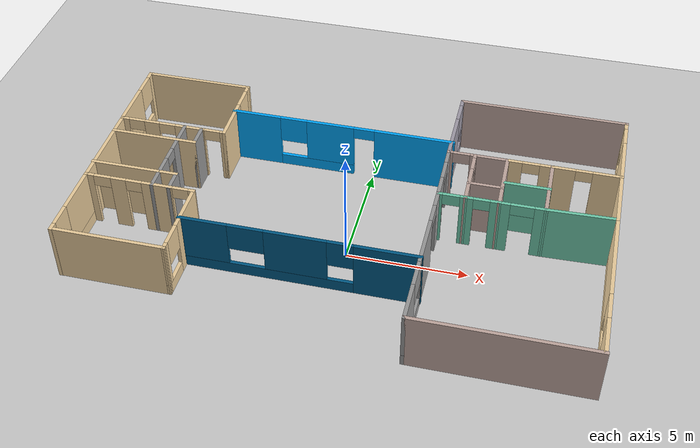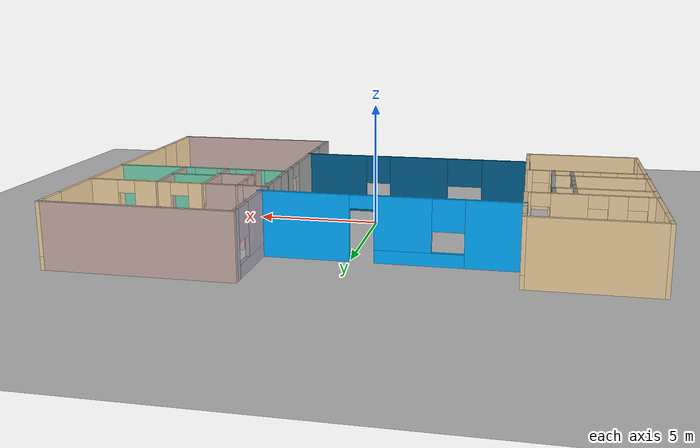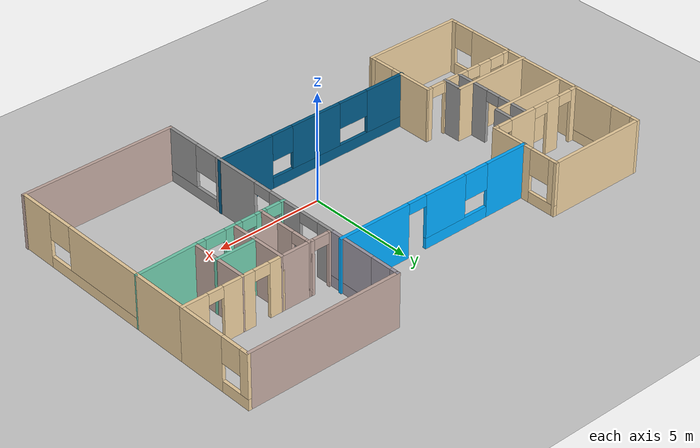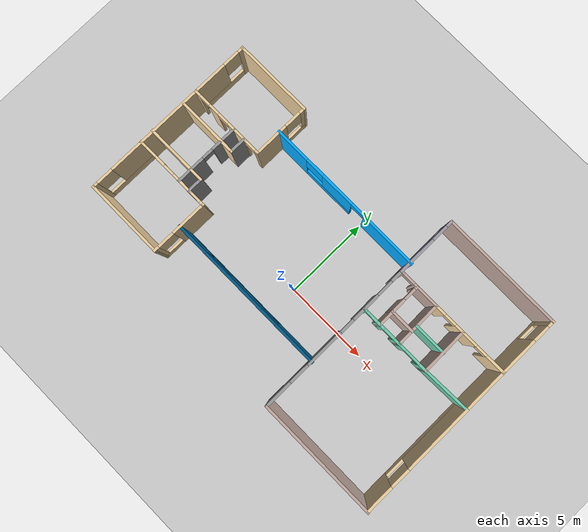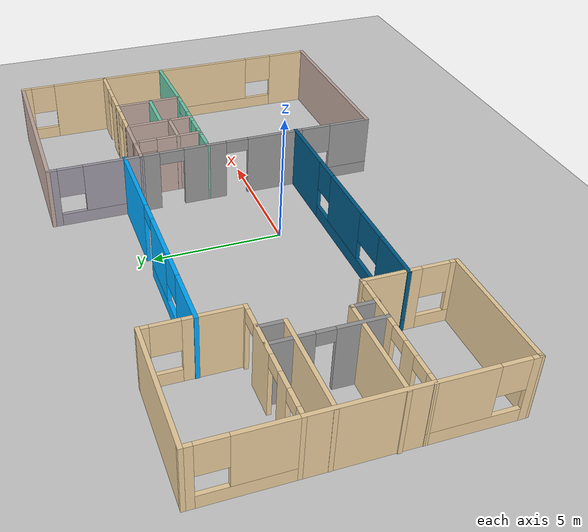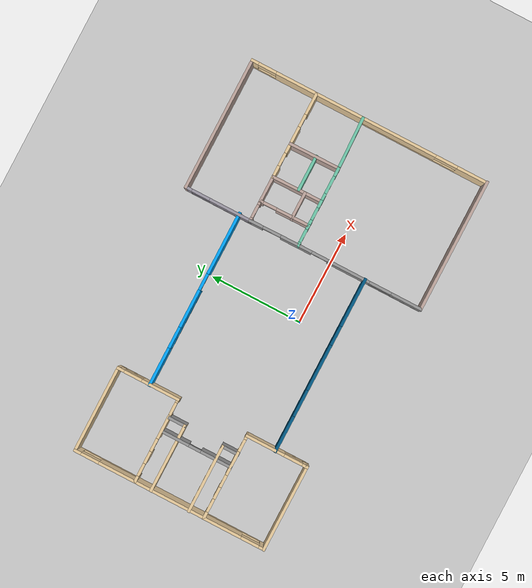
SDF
<sdf version="1.6">
 <world name="default">
  <model name="ground_plane">
   <static>1</static>
   <link name="link">
    <collision name="collision">
     <geometry><plane><normal>0 0 1</normal><size>100 100</size></plane></geometry>
     <surface><friction><ode><mu>100</mu><mu2>50</mu2></ode></friction></surface>
    </collision>
    <visual name="visual">
     <cast_shadows>0</cast_shadows>
     <geometry><plane><normal>0 0 1</normal><size>100 100</size></plane></geometry>
     <material>
      <script><uri>file://media/materials/scripts/gazebo.material</uri><name>Gazebo/Grey</name></script>
     </material>
    </visual>
   </link>
  </model>
  <model name="building_1">
   <pose>-0.196 1.55734 0 0 -0 0</pose>
   <link name="Wall_0">
    <pose>10.6077 -3.05967 0 0 -0 1.5708</pose>
    <visual name="Wall_0_Visual_0">
     <pose>-2.67508 0 1.25 0 -0 0</pose>
     <geometry><box><size>1.64985 0.15 2.5</size></box></geometry>
     <material>
      <script><uri>file://media/materials/scripts/gazebo.material</uri><name>Gazebo/Grey</name></script>
      <ambient>0.921569 0.807843 0.615686 1</ambient>
     </material>
    </visual>
    <collision name="Wall_0_Collision_0">
     <geometry><box><size>1.64985 0.15 2.5</size></box></geometry>
     <pose>-2.67508 0 1.25 0 -0 0</pose>
    </collision>
    <visual name="Wall_0_Visual_1">
     <pose>0.824924 0 0.25 0 -0 0</pose>
     <geometry><box><size>5.35015 0.15 0.5</size></box></geometry>
     <material>
      <script><uri>file://media/materials/scripts/gazebo.material</uri><name>Gazebo/Grey</name></script>
      <ambient>0.921569 0.807843 0.615686 1</ambient>
     </material>
    </visual>
    <collision name="Wall_0_Collision_1">
     <geometry><box><size>5.35015 0.15 0.5</size></box></geometry>
     <pose>0.824924 0 0.25 0 -0 0</pose>
    </collision>
    <visual name="Wall_0_Visual_2">
     <pose>1.42468 0 1.5 0 -0 0</pose>
     <geometry><box><size>4.15065 0.15 2</size></box></geometry>
     <material>
      <script><uri>file://media/materials/scripts/gazebo.material</uri><name>Gazebo/Grey</name></script>
      <ambient>0.921569 0.807843 0.615686 1</ambient>
     </material>
    </visual>
    <collision name="Wall_0_Collision_2">
     <geometry><box><size>4.15065 0.15 2</size></box></geometry>
     <pose>1.42468 0 1.5 0 -0 0</pose>
    </collision>
    <visual name="Wall_0_Visual_3">
     <pose>-1.2504 0 1.9 0 -0 0</pose>
     <geometry><box><size>1.1995 0.15 1.2</size></box></geometry>
     <material>
      <script><uri>file://media/materials/scripts/gazebo.material</uri><name>Gazebo/Grey</name></script>
      <ambient>0.921569 0.807843 0.615686 1</ambient>
     </material>
    </visual>
    <collision name="Wall_0_Collision_3">
     <geometry><box><size>1.1995 0.15 1.2</size></box></geometry>
     <pose>-1.2504 0 1.9 0 -0 0</pose>
    </collision>
   </link>
   <link name="Wall_1">
    <collision name="Wall_1_Collision">
     <geometry><box><size>2.75 0.15 2.5</size></box></geometry>
     <pose>0 0 1.25 0 -0 0</pose>
    </collision>
    <visual name="Wall_1_Visual">
     <pose>0 0 1.25 0 -0 0</pose>
     <geometry><box><size>2.75 0.15 2.5</size></box></geometry>
     <material>
      <script><uri>file://media/materials/scripts/gazebo.material</uri><name>Gazebo/Grey</name></script>
      <ambient>0.921569 0.807843 0.615686 1</ambient>
     </material>
    </visual>
    <pose>10.6077 1.66533 0 0 -0 1.5708</pose>
   </link>
   <link name="Wall_11">
    <pose>3.50766 4.76533 0 0 0 -1.5708</pose>
    <visual name="Wall_11_Visual_0">
     <pose>-1.66535 0 1.25 0 -0 0</pose>
     <geometry><box><size>0.419296 0.15 2.5</size></box></geometry>
     <material>
      <script><uri>file://media/materials/scripts/gazebo.material</uri><name>Gazebo/Grey</name></script>
      <ambient>0.627451 0.607843 0.658824 1</ambient>
     </material>
    </visual>
    <collision name="Wall_11_Collision_0">
     <geometry><box><size>0.419296 0.15 2.5</size></box></geometry>
     <pose>-1.66535 0 1.25 0 -0 0</pose>
    </collision>
    <visual name="Wall_11_Visual_1">
     <pose>0.209648 0 0.25 0 -0 0</pose>
     <geometry><box><size>3.3307 0.15 0.5</size></box></geometry>
     <material>
      <script><uri>file://media/materials/scripts/gazebo.material</uri><name>Gazebo/Grey</name></script>
      <ambient>0.627451 0.607843 0.658824 1</ambient>
     </material>
    </visual>
    <collision name="Wall_11_Collision_1">
     <geometry><box><size>3.3307 0.15 0.5</size></box></geometry>
     <pose>0.209648 0 0.25 0 -0 0</pose>
    </collision>
    <visual name="Wall_11_Visual_2">
     <pose>0.700272 0 1.5 0 -0 0</pose>
     <geometry><box><size>2.34945 0.15 2</size></box></geometry>
     <material>
      <script><uri>file://media/materials/scripts/gazebo.material</uri><name>Gazebo/Grey</name></script>
      <ambient>0.627451 0.607843 0.658824 1</ambient>
     </material>
    </visual>
    <collision name="Wall_11_Collision_2">
     <geometry><box><size>2.34945 0.15 2</size></box></geometry>
     <pose>0.700272 0 1.5 0 -0 0</pose>
    </collision>
    <visual name="Wall_11_Visual_3">
     <pose>-0.96508 0 1.9 0 -0 0</pose>
     <geometry><box><size>0.981249 0.15 1.2</size></box></geometry>
     <material>
      <script><uri>file://media/materials/scripts/gazebo.material</uri><name>Gazebo/Grey</name></script>
      <ambient>0.627451 0.607843 0.658824 1</ambient>
     </material>
    </visual>
    <collision name="Wall_11_Collision_3">
     <geometry><box><size>0.981249 0.15 1.2</size></box></geometry>
     <pose>-0.96508 0 1.9 0 -0 0</pose>
    </collision>
   </link>
   <link name="Wall_15">
    <pose>4.05766 2.96533 0 0 -0 0</pose>
    <visual name="Wall_15_Visual_0">
     <pose>-0.500149 0 1.25 0 -0 0</pose>
     <geometry><box><size>0.249701 0.15 2.5</size></box></geometry>
     <material>
      <script><uri>file://media/materials/scripts/gazebo.material</uri><name>Gazebo/Grey</name></script>
      <ambient>0.760784 0.662745 0.627451 1</ambient>
     </material>
    </visual>
    <collision name="Wall_15_Collision_0">
     <geometry><box><size>0.249701 0.15 2.5</size></box></geometry>
     <pose>-0.500149 0 1.25 0 -0 0</pose>
    </collision>
    <visual name="Wall_15_Visual_1">
     <pose>0.482342 0 1.25 0 -0 0</pose>
     <geometry><box><size>0.285316 0.15 2.5</size></box></geometry>
     <material>
      <script><uri>file://media/materials/scripts/gazebo.material</uri><name>Gazebo/Grey</name></script>
      <ambient>0.760784 0.662745 0.627451 1</ambient>
     </material>
    </visual>
    <collision name="Wall_15_Collision_1">
     <geometry><box><size>0.285316 0.15 2.5</size></box></geometry>
     <pose>0.482342 0 1.25 0 -0 0</pose>
    </collision>
    <visual name="Wall_15_Visual_2">
     <pose>-0.017807 0 2.25 0 -0 0</pose>
     <geometry><box><size>0.714982 0.15 0.5</size></box></geometry>
     <material>
      <script><uri>file://media/materials/scripts/gazebo.material</uri><name>Gazebo/Grey</name></script>
      <ambient>0.760784 0.662745 0.627451 1</ambient>
     </material>
    </visual>
    <collision name="Wall_15_Collision_2">
     <geometry><box><size>0.714982 0.15 0.5</size></box></geometry>
     <pose>-0.017807 0 2.25 0 -0 0</pose>
    </collision>
   </link>
   <link name="Wall_16">
    <collision name="Wall_16_Collision">
     <geometry><box><size>1.5 0.15 2.5</size></box></geometry>
     <pose>0 0 1.25 0 -0 0</pose>
    </collision>
    <visual name="Wall_16_Visual">
     <pose>0 0 1.25 0 -0 0</pose>
     <geometry><box><size>1.5 0.15 2.5</size></box></geometry>
     <material>
      <script><uri>file://media/materials/scripts/gazebo.material</uri><name>Gazebo/Grey</name></script>
      <ambient>0.760784 0.662745 0.627451 1</ambient>
     </material>
    </visual>
    <pose>5.28266 2.96533 0 0 -0 0</pose>
   </link>
   <link name="Wall_17">
    <pose>6.88266 2.96533 0 0 -0 0</pose>
    <visual name="Wall_17_Visual_0">
     <pose>-0.653322 0 1.25 0 -0 0</pose>
     <geometry><box><size>0.693356 0.15 2.5</size></box></geometry>
     <material>
      <script><uri>file://media/materials/scripts/gazebo.material</uri><name>Gazebo/Grey</name></script>
      <ambient>0.921569 0.807843 0.615686 1</ambient>
     </material>
    </visual>
    <collision name="Wall_17_Collision_0">
     <geometry><box><size>0.693356 0.15 2.5</size></box></geometry>
     <pose>-0.653322 0 1.25 0 -0 0</pose>
    </collision>
    <visual name="Wall_17_Visual_1">
     <pose>0.704169 0 1.25 0 -0 0</pose>
     <geometry><box><size>0.591662 0.15 2.5</size></box></geometry>
     <material>
      <script><uri>file://media/materials/scripts/gazebo.material</uri><name>Gazebo/Grey</name></script>
      <ambient>0.921569 0.807843 0.615686 1</ambient>
     </material>
    </visual>
    <collision name="Wall_17_Collision_1">
     <geometry><box><size>0.591662 0.15 2.5</size></box></geometry>
     <pose>0.704169 0 1.25 0 -0 0</pose>
    </collision>
    <visual name="Wall_17_Visual_2">
     <pose>0.050847 0 2.25 0 -0 0</pose>
     <geometry><box><size>0.714982 0.15 0.5</size></box></geometry>
     <material>
      <script><uri>file://media/materials/scripts/gazebo.material</uri><name>Gazebo/Grey</name></script>
      <ambient>0.921569 0.807843 0.615686 1</ambient>
     </material>
    </visual>
    <collision name="Wall_17_Collision_2">
     <geometry><box><size>0.714982 0.15 0.5</size></box></geometry>
     <pose>0.050847 0 2.25 0 -0 0</pose>
    </collision>
   </link>
   <link name="Wall_18">
    <pose>9.20766 2.96533 0 0 -0 0</pose>
    <visual name="Wall_18_Visual_0">
     <pose>-0.963773 0 1.25 0 -0 0</pose>
     <geometry><box><size>1.02245 0.15 2.5</size></box></geometry>
     <material>
      <script><uri>file://media/materials/scripts/gazebo.material</uri><name>Gazebo/Grey</name></script>
      <ambient>0.921569 0.807843 0.615686 1</ambient>
     </material>
    </visual>
    <collision name="Wall_18_Collision_0">
     <geometry><box><size>1.02245 0.15 2.5</size></box></geometry>
     <pose>-0.963773 0 1.25 0 -0 0</pose>
    </collision>
    <visual name="Wall_18_Visual_1">
     <pose>0.85844 0 1.25 0 -0 0</pose>
     <geometry><box><size>1.23312 0.15 2.5</size></box></geometry>
     <material>
      <script><uri>file://media/materials/scripts/gazebo.material</uri><name>Gazebo/Grey</name></script>
      <ambient>0.921569 0.807843 0.615686 1</ambient>
     </material>
    </visual>
    <collision name="Wall_18_Collision_1">
     <geometry><box><size>1.23312 0.15 2.5</size></box></geometry>
     <pose>0.85844 0 1.25 0 -0 0</pose>
    </collision>
    <visual name="Wall_18_Visual_2">
     <pose>-0.105333 0 2.25 0 -0 0</pose>
     <geometry><box><size>0.694425 0.15 0.5</size></box></geometry>
     <material>
      <script><uri>file://media/materials/scripts/gazebo.material</uri><name>Gazebo/Grey</name></script>
      <ambient>0.921569 0.807843 0.615686 1</ambient>
     </material>
    </visual>
    <collision name="Wall_18_Collision_2">
     <geometry><box><size>0.694425 0.15 0.5</size></box></geometry>
     <pose>-0.105333 0 2.25 0 -0 0</pose>
    </collision>
   </link>
   <link name="Wall_2">
    <pose>10.6077 4.76533 0 0 -0 1.5708</pose>
    <visual name="Wall_2_Visual_0">
     <pose>-0.712356 0 1.25 0 -0 0</pose>
     <geometry><box><size>2.32529 0.15 2.5</size></box></geometry>
     <material>
      <script><uri>file://media/materials/scripts/gazebo.material</uri><name>Gazebo/Grey</name></script>
      <ambient>0.921569 0.807843 0.615686 1</ambient>
     </material>
    </visual>
    <collision name="Wall_2_Collision_0">
     <geometry><box><size>2.32529 0.15 2.5</size></box></geometry>
     <pose>-0.712356 0 1.25 0 -0 0</pose>
    </collision>
    <visual name="Wall_2_Visual_1">
     <pose>1.16264 0 0.25 0 -0 0</pose>
     <geometry><box><size>1.42471 0.15 0.5</size></box></geometry>
     <material>
      <script><uri>file://media/materials/scripts/gazebo.material</uri><name>Gazebo/Grey</name></script>
      <ambient>0.921569 0.807843 0.615686 1</ambient>
     </material>
    </visual>
    <collision name="Wall_2_Collision_1">
     <geometry><box><size>1.42471 0.15 0.5</size></box></geometry>
     <pose>1.16264 0 0.25 0 -0 0</pose>
    </collision>
    <visual name="Wall_2_Visual_2">
     <pose>1.65931 0 1.5 0 -0 0</pose>
     <geometry><box><size>0.431379 0.15 2</size></box></geometry>
     <material>
      <script><uri>file://media/materials/scripts/gazebo.material</uri><name>Gazebo/Grey</name></script>
      <ambient>0.921569 0.807843 0.615686 1</ambient>
     </material>
    </visual>
    <collision name="Wall_2_Collision_2">
     <geometry><box><size>0.431379 0.15 2</size></box></geometry>
     <pose>1.65931 0 1.5 0 -0 0</pose>
    </collision>
    <visual name="Wall_2_Visual_3">
     <pose>0.946955 0 1.9 0 -0 0</pose>
     <geometry><box><size>0.993332 0.15 1.2</size></box></geometry>
     <material>
      <script><uri>file://media/materials/scripts/gazebo.material</uri><name>Gazebo/Grey</name></script>
      <ambient>0.921569 0.807843 0.615686 1</ambient>
     </material>
    </visual>
    <collision name="Wall_2_Collision_3">
     <geometry><box><size>0.993332 0.15 1.2</size></box></geometry>
     <pose>0.946955 0 1.9 0 -0 0</pose>
    </collision>
   </link>
   <link name="Wall_20">
    <pose>4.08783 0.284672 0 0 -0 0</pose>
    <visual name="Wall_20_Visual_0">
     <pose>-0.502297 0 1.25 0 -0 0</pose>
     <geometry><box><size>0.245405 0.15 2.5</size></box></geometry>
     <material>
      <script><uri>file://media/materials/scripts/gazebo.material</uri><name>Gazebo/Grey</name></script>
      <ambient>0.435294 0.796078 0.67451 1</ambient>
     </material>
    </visual>
    <collision name="Wall_20_Collision_0">
     <geometry><box><size>0.245405 0.15 2.5</size></box></geometry>
     <pose>-0.502297 0 1.25 0 -0 0</pose>
    </collision>
    <visual name="Wall_20_Visual_1">
     <pose>0.480194 0 1.25 0 -0 0</pose>
     <geometry><box><size>0.289613 0.15 2.5</size></box></geometry>
     <material>
      <script><uri>file://media/materials/scripts/gazebo.material</uri><name>Gazebo/Grey</name></script>
      <ambient>0.435294 0.796078 0.67451 1</ambient>
     </material>
    </visual>
    <collision name="Wall_20_Collision_1">
     <geometry><box><size>0.289613 0.15 2.5</size></box></geometry>
     <pose>0.480194 0 1.25 0 -0 0</pose>
    </collision>
    <visual name="Wall_20_Visual_2">
     <pose>-0.022104 0 2.25 0 -0 0</pose>
     <geometry><box><size>0.714982 0.15 0.5</size></box></geometry>
     <material>
      <script><uri>file://media/materials/scripts/gazebo.material</uri><name>Gazebo/Grey</name></script>
      <ambient>0.435294 0.796078 0.67451 1</ambient>
     </material>
    </visual>
    <collision name="Wall_20_Collision_2">
     <geometry><box><size>0.714982 0.15 0.5</size></box></geometry>
     <pose>-0.022104 0 2.25 0 -0 0</pose>
    </collision>
   </link>
   <link name="Wall_21">
    <pose>5.31283 0.284672 0 0 -0 0</pose>
    <visual name="Wall_21_Visual_0">
     <pose>-0.555432 0 1.25 0 -0 0</pose>
     <geometry><box><size>0.389136 0.15 2.5</size></box></geometry>
     <material>
      <script><uri>file://media/materials/scripts/gazebo.material</uri><name>Gazebo/Grey</name></script>
      <ambient>0.435294 0.796078 0.67451 1</ambient>
     </material>
    </visual>
    <collision name="Wall_21_Collision_0">
     <geometry><box><size>0.389136 0.15 2.5</size></box></geometry>
     <pose>-0.555432 0 1.25 0 -0 0</pose>
    </collision>
    <visual name="Wall_21_Visual_1">
     <pose>0.531502 0 1.25 0 -0 0</pose>
     <geometry><box><size>0.436997 0.15 2.5</size></box></geometry>
     <material>
      <script><uri>file://media/materials/scripts/gazebo.material</uri><name>Gazebo/Grey</name></script>
      <ambient>0.435294 0.796078 0.67451 1</ambient>
     </material>
    </visual>
    <collision name="Wall_21_Collision_1">
     <geometry><box><size>0.436997 0.15 2.5</size></box></geometry>
     <pose>0.531502 0 1.25 0 -0 0</pose>
    </collision>
    <visual name="Wall_21_Visual_2">
     <pose>-0.023931 0 2.25 0 -0 0</pose>
     <geometry><box><size>0.673867 0.15 0.5</size></box></geometry>
     <material>
      <script><uri>file://media/materials/scripts/gazebo.material</uri><name>Gazebo/Grey</name></script>
      <ambient>0.435294 0.796078 0.67451 1</ambient>
     </material>
    </visual>
    <collision name="Wall_21_Collision_2">
     <geometry><box><size>0.673867 0.15 0.5</size></box></geometry>
     <pose>-0.023931 0 2.25 0 -0 0</pose>
    </collision>
   </link>
   <link name="Wall_22">
    <pose>6.91283 0.284672 0 0 -0 0</pose>
    <visual name="Wall_22_Visual_0">
     <pose>-0.740361 0 1.25 0 -0 0</pose>
     <geometry><box><size>0.519278 0.15 2.5</size></box></geometry>
     <material>
      <script><uri>file://media/materials/scripts/gazebo.material</uri><name>Gazebo/Grey</name></script>
      <ambient>0.435294 0.796078 0.67451 1</ambient>
     </material>
    </visual>
    <collision name="Wall_22_Collision_0">
     <geometry><box><size>0.519278 0.15 2.5</size></box></geometry>
     <pose>-0.740361 0 1.25 0 -0 0</pose>
    </collision>
    <visual name="Wall_22_Visual_1">
     <pose>0.740475 0 1.25 0 -0 0</pose>
     <geometry><box><size>0.519049 0.15 2.5</size></box></geometry>
     <material>
      <script><uri>file://media/materials/scripts/gazebo.material</uri><name>Gazebo/Grey</name></script>
      <ambient>0.435294 0.796078 0.67451 1</ambient>
     </material>
    </visual>
    <collision name="Wall_22_Collision_1">
     <geometry><box><size>0.519049 0.15 2.5</size></box></geometry>
     <pose>0.740475 0 1.25 0 -0 0</pose>
    </collision>
    <visual name="Wall_22_Visual_2">
     <pose>0.000114 0 2.25 0 -0 0</pose>
     <geometry><box><size>0.961673 0.15 0.5</size></box></geometry>
     <material>
      <script><uri>file://media/materials/scripts/gazebo.material</uri><name>Gazebo/Grey</name></script>
      <ambient>0.435294 0.796078 0.67451 1</ambient>
     </material>
    </visual>
    <collision name="Wall_22_Collision_2">
     <geometry><box><size>0.961673 0.15 0.5</size></box></geometry>
     <pose>0.000114 0 2.25 0 -0 0</pose>
    </collision>
   </link>
   <link name="Wall_25">
    <pose>4.62274 1.625 0 0 0 -1.55954</pose>
    <visual name="Wall_25_Visual_0">
     <pose>-1.29279 0 1.25 0 -0 0</pose>
     <geometry><box><size>0.245238 0.15 2.5</size></box></geometry>
     <material>
      <script><uri>file://media/materials/scripts/gazebo.material</uri><name>Gazebo/Grey</name></script>
      <ambient>0.760784 0.662745 0.627451 1</ambient>
     </material>
    </visual>
    <collision name="Wall_25_Collision_0">
     <geometry><box><size>0.245238 0.15 2.5</size></box></geometry>
     <pose>-1.29279 0 1.25 0 -0 0</pose>
    </collision>
    <visual name="Wall_25_Visual_1">
     <pose>0.482068 0 1.25 0 -0 0</pose>
     <geometry><box><size>1.86669 0.15 2.5</size></box></geometry>
     <material>
      <script><uri>file://media/materials/scripts/gazebo.material</uri><name>Gazebo/Grey</name></script>
      <ambient>0.760784 0.662745 0.627451 1</ambient>
     </material>
    </visual>
    <collision name="Wall_25_Collision_1">
     <geometry><box><size>1.86669 0.15 2.5</size></box></geometry>
     <pose>0.482068 0 1.25 0 -0 0</pose>
    </collision>
    <visual name="Wall_25_Visual_2">
     <pose>-0.810726 0 2.25 0 -0 0</pose>
     <geometry><box><size>0.718899 0.15 0.5</size></box></geometry>
     <material>
      <script><uri>file://media/materials/scripts/gazebo.material</uri><name>Gazebo/Grey</name></script>
      <ambient>0.760784 0.662745 0.627451 1</ambient>
     </material>
    </visual>
    <collision name="Wall_25_Collision_2">
     <geometry><box><size>0.718899 0.15 0.5</size></box></geometry>
     <pose>-0.810726 0 2.25 0 -0 0</pose>
    </collision>
   </link>
   <link name="Wall_27">
    <collision name="Wall_27_Collision">
     <geometry><box><size>2.83083 0.15 2.5</size></box></geometry>
     <pose>0 0 1.25 0 -0 0</pose>
    </collision>
    <visual name="Wall_27_Visual">
     <pose>0 0 1.25 0 -0 0</pose>
     <geometry><box><size>2.83083 0.15 2.5</size></box></geometry>
     <material>
      <script><uri>file://media/materials/scripts/gazebo.material</uri><name>Gazebo/Grey</name></script>
      <ambient>0.760784 0.662745 0.627451 1</ambient>
     </material>
    </visual>
    <pose>5.97274 1.625 0 0 0 -1.55954</pose>
   </link>
   <link name="Wall_29">
    <collision name="Wall_29_Collision">
     <geometry><box><size>2.83083 0.15 2.5</size></box></geometry>
     <pose>0 0 1.25 0 -0 0</pose>
    </collision>
    <visual name="Wall_29_Visual">
     <pose>0 0 1.25 0 -0 0</pose>
     <geometry><box><size>2.83083 0.15 2.5</size></box></geometry>
     <material>
      <script><uri>file://media/materials/scripts/gazebo.material</uri><name>Gazebo/Grey</name></script>
      <ambient>0.760784 0.662745 0.627451 1</ambient>
     </material>
    </visual>
    <pose>7.82274 1.625 0 0 0 -1.55954</pose>
   </link>
   <link name="Wall_31">
    <collision name="Wall_31_Collision">
     <geometry><box><size>1.5 0.15 2.5</size></box></geometry>
     <pose>0 0 1.25 0 -0 0</pose>
    </collision>
    <visual name="Wall_31_Visual">
     <pose>0 0 1.25 0 -0 0</pose>
     <geometry><box><size>1.5 0.15 2.5</size></box></geometry>
     <material>
      <script><uri>file://media/materials/scripts/gazebo.material</uri><name>Gazebo/Grey</name></script>
      <ambient>0.760784 0.662745 0.627451 1</ambient>
     </material>
    </visual>
    <pose>5.29549 1.19333 0 0 -0 0</pose>
   </link>
   <link name="Wall_33">
    <collision name="Wall_33_Collision">
     <geometry><box><size>2 0.15 2.5</size></box></geometry>
     <pose>0 0 1.25 0 -0 0</pose>
    </collision>
    <visual name="Wall_33_Visual">
     <pose>0 0 1.25 0 -0 0</pose>
     <geometry><box><size>2 0.15 2.5</size></box></geometry>
     <material>
      <script><uri>file://media/materials/scripts/gazebo.material</uri><name>Gazebo/Grey</name></script>
      <ambient>0.435294 0.796078 0.67451 1</ambient>
     </material>
    </visual>
    <pose>6.91815 1.54133 0 0 -0 0</pose>
   </link>
   <link name="Wall_35">
    <pose>3.52274 1.625 0 0 0 -1.55954</pose>
    <visual name="Wall_35_Visual_0">
     <pose>-1.02107 0 1.25 0 -0 0</pose>
     <geometry><box><size>0.78869 0.15 2.5</size></box></geometry>
     <material>
      <script><uri>file://media/materials/scripts/gazebo.material</uri><name>Gazebo/Grey</name></script>
      <ambient>0.635294 0.619608 0.658824 1</ambient>
     </material>
    </visual>
    <collision name="Wall_35_Collision_0">
     <geometry><box><size>0.78869 0.15 2.5</size></box></geometry>
     <pose>-1.02107 0 1.25 0 -0 0</pose>
    </collision>
    <visual name="Wall_35_Visual_1">
     <pose>0.885093 0 1.25 0 -0 0</pose>
     <geometry><box><size>1.06064 0.15 2.5</size></box></geometry>
     <material>
      <script><uri>file://media/materials/scripts/gazebo.material</uri><name>Gazebo/Grey</name></script>
      <ambient>0.635294 0.619608 0.658824 1</ambient>
     </material>
    </visual>
    <collision name="Wall_35_Collision_1">
     <geometry><box><size>1.06064 0.15 2.5</size></box></geometry>
     <pose>0.885093 0 1.25 0 -0 0</pose>
    </collision>
    <visual name="Wall_35_Visual_2">
     <pose>-0.135975 0 2.25 0 -0 0</pose>
     <geometry><box><size>0.981496 0.15 0.5</size></box></geometry>
     <material>
      <script><uri>file://media/materials/scripts/gazebo.material</uri><name>Gazebo/Grey</name></script>
      <ambient>0.635294 0.619608 0.658824 1</ambient>
     </material>
    </visual>
    <collision name="Wall_35_Collision_2">
     <geometry><box><size>0.981496 0.15 0.5</size></box></geometry>
     <pose>-0.135975 0 2.25 0 -0 0</pose>
    </collision>
   </link>
   <link name="Wall_37">
    <pose>-1.22369 3.60062 0 0 -0 0</pose>
    <visual name="Wall_37_Visual_0">
     <pose>-3.80255 0 1.25 0 -0 0</pose>
     <geometry><box><size>2.14491 0.15 2.5</size></box></geometry>
     <material>
      <script><uri>file://media/materials/scripts/gazebo.material</uri><name>Gazebo/Grey</name></script>
      <ambient>0 0.666667 1 1</ambient>
     </material>
    </visual>
    <collision name="Wall_37_Collision_0">
     <geometry><box><size>2.14491 0.15 2.5</size></box></geometry>
     <pose>-3.80255 0 1.25 0 -0 0</pose>
    </collision>
    <visual name="Wall_37_Visual_1">
     <pose>3.14793 0 1.25 0 -0 0</pose>
     <geometry><box><size>3.45414 0.15 2.5</size></box></geometry>
     <material>
      <script><uri>file://media/materials/scripts/gazebo.material</uri><name>Gazebo/Grey</name></script>
      <ambient>0 0.666667 1 1</ambient>
     </material>
    </visual>
    <collision name="Wall_37_Collision_1">
     <geometry><box><size>3.45414 0.15 2.5</size></box></geometry>
     <pose>3.14793 0 1.25 0 -0 0</pose>
    </collision>
    <visual name="Wall_37_Visual_2">
     <pose>-1.10462 0 0.25 0 -0 0</pose>
     <geometry><box><size>3.25095 0.15 0.5</size></box></geometry>
     <material>
      <script><uri>file://media/materials/scripts/gazebo.material</uri><name>Gazebo/Grey</name></script>
      <ambient>0 0.666667 1 1</ambient>
     </material>
    </visual>
    <collision name="Wall_37_Collision_2">
     <geometry><box><size>3.25095 0.15 0.5</size></box></geometry>
     <pose>-1.10462 0 0.25 0 -0 0</pose>
    </collision>
    <visual name="Wall_37_Visual_3">
     <pose>-0.519342 0 1.5 0 -0 0</pose>
     <geometry><box><size>2.0804 0.15 2</size></box></geometry>
     <material>
      <script><uri>file://media/materials/scripts/gazebo.material</uri><name>Gazebo/Grey</name></script>
      <ambient>0 0.666667 1 1</ambient>
     </material>
    </visual>
    <collision name="Wall_37_Collision_3">
     <geometry><box><size>2.0804 0.15 2</size></box></geometry>
     <pose>-0.519342 0 1.5 0 -0 0</pose>
    </collision>
    <visual name="Wall_37_Visual_4">
     <pose>-2.14482 0 1.9 0 -0 0</pose>
     <geometry><box><size>1.17055 0.15 1.2</size></box></geometry>
     <material>
      <script><uri>file://media/materials/scripts/gazebo.material</uri><name>Gazebo/Grey</name></script>
      <ambient>0 0.666667 1 1</ambient>
     </material>
    </visual>
    <collision name="Wall_37_Collision_4">
     <geometry><box><size>1.17055 0.15 1.2</size></box></geometry>
     <pose>-2.14482 0 1.9 0 -0 0</pose>
    </collision>
    <visual name="Wall_37_Visual_5">
     <pose>0.970856 0 2.25 0 -0 0</pose>
     <geometry><box><size>0.9 0.15 0.5</size></box></geometry>
     <material>
      <script><uri>file://media/materials/scripts/gazebo.material</uri><name>Gazebo/Grey</name></script>
      <ambient>0 0.666667 1 1</ambient>
     </material>
    </visual>
    <collision name="Wall_37_Collision_5">
     <geometry><box><size>0.9 0.15 0.5</size></box></geometry>
     <pose>0.970856 0 2.25 0 -0 0</pose>
    </collision>
   </link>
   <link name="Wall_39">
    <pose>-5.99933 3.69534 0 0 -0 1.5708</pose>
    <visual name="Wall_39_Visual_0">
     <pose>-0.7017 0 1.25 0 -0 0</pose>
     <geometry><box><size>2.0966 0.15 2.5</size></box></geometry>
     <material>
      <script><uri>file://media/materials/scripts/gazebo.material</uri><name>Gazebo/Grey</name></script>
      <ambient>0.921569 0.807843 0.615686 1</ambient>
     </material>
    </visual>
    <collision name="Wall_39_Collision_0">
     <geometry><box><size>2.0966 0.15 2.5</size></box></geometry>
     <pose>-0.7017 0 1.25 0 -0 0</pose>
    </collision>
    <visual name="Wall_39_Visual_1">
     <pose>1.0483 0 0.25 0 -0 0</pose>
     <geometry><box><size>1.4034 0.15 0.5</size></box></geometry>
     <material>
      <script><uri>file://media/materials/scripts/gazebo.material</uri><name>Gazebo/Grey</name></script>
      <ambient>0.921569 0.807843 0.615686 1</ambient>
     </material>
    </visual>
    <collision name="Wall_39_Collision_1">
     <geometry><box><size>1.4034 0.15 0.5</size></box></geometry>
     <pose>1.0483 0 0.25 0 -0 0</pose>
    </collision>
    <visual name="Wall_39_Visual_2">
     <pose>1.54557 0 1.5 0 -0 0</pose>
     <geometry><box><size>0.40886 0.15 2</size></box></geometry>
     <material>
      <script><uri>file://media/materials/scripts/gazebo.material</uri><name>Gazebo/Grey</name></script>
      <ambient>0.921569 0.807843 0.615686 1</ambient>
     </material>
    </visual>
    <collision name="Wall_39_Collision_2">
     <geometry><box><size>0.40886 0.15 2</size></box></geometry>
     <pose>1.54557 0 1.5 0 -0 0</pose>
    </collision>
    <visual name="Wall_39_Visual_3">
     <pose>0.84387 0 1.9 0 -0 0</pose>
     <geometry><box><size>0.994541 0.15 1.2</size></box></geometry>
     <material>
      <script><uri>file://media/materials/scripts/gazebo.material</uri><name>Gazebo/Grey</name></script>
      <ambient>0.921569 0.807843 0.615686 1</ambient>
     </material>
    </visual>
    <collision name="Wall_39_Collision_3">
     <geometry><box><size>0.994541 0.15 1.2</size></box></geometry>
     <pose>0.84387 0 1.9 0 -0 0</pose>
    </collision>
   </link>
   <link name="Wall_40">
    <collision name="Wall_40_Collision">
     <geometry><box><size>4.75 0.15 2.5</size></box></geometry>
     <pose>0 0 1.25 0 -0 0</pose>
    </collision>
    <visual name="Wall_40_Visual">
     <pose>0 0 1.25 0 -0 0</pose>
     <geometry><box><size>4.75 0.15 2.5</size></box></geometry>
     <material>
      <script><uri>file://media/materials/scripts/gazebo.material</uri><name>Gazebo/Grey</name></script>
      <ambient>0.921569 0.807843 0.615686 1</ambient>
     </material>
    </visual>
    <pose>-8.29933 5.37033 0 0 -0 3.14159</pose>
   </link>
   <link name="Wall_41">
    <pose>-10.5993 3.69534 0 0 0 -1.5708</pose>
    <visual name="Wall_41_Visual_0">
     <pose>-1.54557 0 1.25 0 -0 0</pose>
     <geometry><box><size>0.40886 0.15 2.5</size></box></geometry>
     <material>
      <script><uri>file://media/materials/scripts/gazebo.material</uri><name>Gazebo/Grey</name></script>
      <ambient>0.921569 0.807843 0.615686 1</ambient>
     </material>
    </visual>
    <collision name="Wall_41_Collision_0">
     <geometry><box><size>0.40886 0.15 2.5</size></box></geometry>
     <pose>-1.54557 0 1.25 0 -0 0</pose>
    </collision>
    <visual name="Wall_41_Visual_1">
     <pose>0.20443 0 0.25 0 -0 0</pose>
     <geometry><box><size>3.09114 0.15 0.5</size></box></geometry>
     <material>
      <script><uri>file://media/materials/scripts/gazebo.material</uri><name>Gazebo/Grey</name></script>
      <ambient>0.921569 0.807843 0.615686 1</ambient>
     </material>
    </visual>
    <collision name="Wall_41_Collision_1">
     <geometry><box><size>3.09114 0.15 0.5</size></box></geometry>
     <pose>0.20443 0 0.25 0 -0 0</pose>
    </collision>
    <visual name="Wall_41_Visual_2">
     <pose>0.7017 0 1.5 0 -0 0</pose>
     <geometry><box><size>2.0966 0.15 2</size></box></geometry>
     <material>
      <script><uri>file://media/materials/scripts/gazebo.material</uri><name>Gazebo/Grey</name></script>
      <ambient>0.921569 0.807843 0.615686 1</ambient>
     </material>
    </visual>
    <collision name="Wall_41_Collision_2">
     <geometry><box><size>2.0966 0.15 2</size></box></geometry>
     <pose>0.7017 0 1.5 0 -0 0</pose>
    </collision>
    <visual name="Wall_41_Visual_3">
     <pose>-0.84387 0 1.9 0 -0 0</pose>
     <geometry><box><size>0.994541 0.15 1.2</size></box></geometry>
     <material>
      <script><uri>file://media/materials/scripts/gazebo.material</uri><name>Gazebo/Grey</name></script>
      <ambient>0.921569 0.807843 0.615686 1</ambient>
     </material>
    </visual>
    <collision name="Wall_41_Collision_3">
     <geometry><box><size>0.994541 0.15 1.2</size></box></geometry>
     <pose>-0.84387 0 1.9 0 -0 0</pose>
    </collision>
   </link>
   <link name="Wall_42">
    <pose>-8.29933 2.02034 0 0 -0 0</pose>
    <visual name="Wall_42_Visual_0">
     <pose>-2.17331 0 1.25 0 -0 0</pose>
     <geometry><box><size>0.403378 0.15 2.5</size></box></geometry>
     <material>
      <script><uri>file://media/materials/scripts/gazebo.material</uri><name>Gazebo/Grey</name></script>
      <ambient>0.921569 0.807843 0.615686 1</ambient>
     </material>
    </visual>
    <collision name="Wall_42_Collision_0">
     <geometry><box><size>0.403378 0.15 2.5</size></box></geometry>
     <pose>-2.17331 0 1.25 0 -0 0</pose>
    </collision>
    <visual name="Wall_42_Visual_1">
     <pose>-0.940648 0 1.25 0 -0 0</pose>
     <geometry><box><size>0.66714 0.15 2.5</size></box></geometry>
     <material>
      <script><uri>file://media/materials/scripts/gazebo.material</uri><name>Gazebo/Grey</name></script>
      <ambient>0.921569 0.807843 0.615686 1</ambient>
     </material>
    </visual>
    <collision name="Wall_42_Collision_1">
     <geometry><box><size>0.66714 0.15 2.5</size></box></geometry>
     <pose>-0.940648 0 1.25 0 -0 0</pose>
    </collision>
    <visual name="Wall_42_Visual_2">
     <pose>0.760562 0 1.25 0 -0 0</pose>
     <geometry><box><size>1.31664 0.15 2.5</size></box></geometry>
     <material>
      <script><uri>file://media/materials/scripts/gazebo.material</uri><name>Gazebo/Grey</name></script>
      <ambient>0.921569 0.807843 0.615686 1</ambient>
     </material>
    </visual>
    <collision name="Wall_42_Collision_2">
     <geometry><box><size>1.31664 0.15 2.5</size></box></geometry>
     <pose>0.760562 0 1.25 0 -0 0</pose>
    </collision>
    <visual name="Wall_42_Visual_3">
     <pose>2.24564 0 1.25 0 -0 0</pose>
     <geometry><box><size>0.258715 0.15 2.5</size></box></geometry>
     <material>
      <script><uri>file://media/materials/scripts/gazebo.material</uri><name>Gazebo/Grey</name></script>
      <ambient>0.921569 0.807843 0.615686 1</ambient>
     </material>
    </visual>
    <collision name="Wall_42_Collision_3">
     <geometry><box><size>0.258715 0.15 2.5</size></box></geometry>
     <pose>2.24564 0 1.25 0 -0 0</pose>
    </collision>
    <visual name="Wall_42_Visual_4">
     <pose>-1.62292 0 2.25 0 -0 0</pose>
     <geometry><box><size>0.697404 0.15 0.5</size></box></geometry>
     <material>
      <script><uri>file://media/materials/scripts/gazebo.material</uri><name>Gazebo/Grey</name></script>
      <ambient>0.921569 0.807843 0.615686 1</ambient>
     </material>
    </visual>
    <collision name="Wall_42_Collision_4">
     <geometry><box><size>0.697404 0.15 0.5</size></box></geometry>
     <pose>-1.62292 0 2.25 0 -0 0</pose>
    </collision>
    <visual name="Wall_42_Visual_5">
     <pose>-0.252418 0 2.25 0 -0 0</pose>
     <geometry><box><size>0.709321 0.15 0.5</size></box></geometry>
     <material>
      <script><uri>file://media/materials/scripts/gazebo.material</uri><name>Gazebo/Grey</name></script>
      <ambient>0.921569 0.807843 0.615686 1</ambient>
     </material>
    </visual>
    <collision name="Wall_42_Collision_5">
     <geometry><box><size>0.709321 0.15 0.5</size></box></geometry>
     <pose>-0.252418 0 2.25 0 -0 0</pose>
    </collision>
    <visual name="Wall_42_Visual_6">
     <pose>1.76758 0 2.25 0 -0 0</pose>
     <geometry><box><size>0.697404 0.15 0.5</size></box></geometry>
     <material>
      <script><uri>file://media/materials/scripts/gazebo.material</uri><name>Gazebo/Grey</name></script>
      <ambient>0.921569 0.807843 0.615686 1</ambient>
     </material>
    </visual>
    <collision name="Wall_42_Collision_6">
     <geometry><box><size>0.697404 0.15 0.5</size></box></geometry>
     <pose>1.76758 0 2.25 0 -0 0</pose>
    </collision>
   </link>
   <link name="Wall_44">
    <pose>-1.23569 -3.45041 0 0 -0 3.14159</pose>
    <visual name="Wall_44_Visual_0">
     <pose>-3.53555 0 1.25 0 -0 0</pose>
     <geometry><box><size>2.6789 0.15 2.5</size></box></geometry>
     <material>
      <script><uri>file://media/materials/scripts/gazebo.material</uri><name>Gazebo/Grey</name></script>
      <ambient>0 0.352941 0.529412 1</ambient>
     </material>
    </visual>
    <collision name="Wall_44_Collision_0">
     <geometry><box><size>2.6789 0.15 2.5</size></box></geometry>
     <pose>-3.53555 0 1.25 0 -0 0</pose>
    </collision>
    <visual name="Wall_44_Visual_1">
     <pose>1.33945 0 0.25 0 -0 0</pose>
     <geometry><box><size>7.0711 0.15 0.5</size></box></geometry>
     <material>
      <script><uri>file://media/materials/scripts/gazebo.material</uri><name>Gazebo/Grey</name></script>
      <ambient>0 0.352941 0.529412 1</ambient>
     </material>
    </visual>
    <collision name="Wall_44_Collision_1">
     <geometry><box><size>7.0711 0.15 0.5</size></box></geometry>
     <pose>1.33945 0 0.25 0 -0 0</pose>
    </collision>
    <visual name="Wall_44_Visual_2">
     <pose>0.120072 0 1.5 0 -0 0</pose>
     <geometry><box><size>2.5207 0.15 2</size></box></geometry>
     <material>
      <script><uri>file://media/materials/scripts/gazebo.material</uri><name>Gazebo/Grey</name></script>
      <ambient>0 0.352941 0.529412 1</ambient>
     </material>
    </visual>
    <collision name="Wall_44_Collision_2">
     <geometry><box><size>2.5207 0.15 2</size></box></geometry>
     <pose>0.120072 0 1.5 0 -0 0</pose>
    </collision>
    <visual name="Wall_44_Visual_3">
     <pose>3.8614 0 1.5 0 -0 0</pose>
     <geometry><box><size>2.0272 0.15 2</size></box></geometry>
     <material>
      <script><uri>file://media/materials/scripts/gazebo.material</uri><name>Gazebo/Grey</name></script>
      <ambient>0 0.352941 0.529412 1</ambient>
     </material>
    </visual>
    <collision name="Wall_44_Collision_3">
     <geometry><box><size>2.0272 0.15 2</size></box></geometry>
     <pose>3.8614 0 1.5 0 -0 0</pose>
    </collision>
    <visual name="Wall_44_Visual_4">
     <pose>-1.66819 0 1.9 0 -0 0</pose>
     <geometry><box><size>1.05583 0.15 1.2</size></box></geometry>
     <material>
      <script><uri>file://media/materials/scripts/gazebo.material</uri><name>Gazebo/Grey</name></script>
      <ambient>0 0.352941 0.529412 1</ambient>
     </material>
    </visual>
    <collision name="Wall_44_Collision_4">
     <geometry><box><size>1.05583 0.15 1.2</size></box></geometry>
     <pose>-1.66819 0 1.9 0 -0 0</pose>
    </collision>
    <visual name="Wall_44_Visual_5">
     <pose>2.11411 0 1.9 0 -0 0</pose>
     <geometry><box><size>1.46738 0.15 1.2</size></box></geometry>
     <material>
      <script><uri>file://media/materials/scripts/gazebo.material</uri><name>Gazebo/Grey</name></script>
      <ambient>0 0.352941 0.529412 1</ambient>
     </material>
    </visual>
    <collision name="Wall_44_Collision_5">
     <geometry><box><size>1.46738 0.15 1.2</size></box></geometry>
     <pose>2.11411 0 1.9 0 -0 0</pose>
    </collision>
   </link>
   <link name="Wall_46">
    <pose>-6.00812 -3.52483 0 0 0 -1.5708</pose>
    <visual name="Wall_46_Visual_0">
     <pose>-0.674013 0 1.25 0 -0 0</pose>
     <geometry><box><size>2.15197 0.15 2.5</size></box></geometry>
     <material>
      <script><uri>file://media/materials/scripts/gazebo.material</uri><name>Gazebo/Grey</name></script>
      <ambient>0.921569 0.807843 0.615686 1</ambient>
     </material>
    </visual>
    <collision name="Wall_46_Collision_0">
     <geometry><box><size>2.15197 0.15 2.5</size></box></geometry>
     <pose>-0.674013 0 1.25 0 -0 0</pose>
    </collision>
    <visual name="Wall_46_Visual_1">
     <pose>1.07599 0 0.25 0 -0 0</pose>
     <geometry><box><size>1.34803 0.15 0.5</size></box></geometry>
     <material>
      <script><uri>file://media/materials/scripts/gazebo.material</uri><name>Gazebo/Grey</name></script>
      <ambient>0.921569 0.807843 0.615686 1</ambient>
     </material>
    </visual>
    <collision name="Wall_46_Collision_1">
     <geometry><box><size>1.34803 0.15 0.5</size></box></geometry>
     <pose>1.07599 0 0.25 0 -0 0</pose>
    </collision>
    <visual name="Wall_46_Visual_2">
     <pose>1.57789 0 1.5 0 -0 0</pose>
     <geometry><box><size>0.344222 0.15 2</size></box></geometry>
     <material>
      <script><uri>file://media/materials/scripts/gazebo.material</uri><name>Gazebo/Grey</name></script>
      <ambient>0.921569 0.807843 0.615686 1</ambient>
     </material>
    </visual>
    <collision name="Wall_46_Collision_2">
     <geometry><box><size>0.344222 0.15 2</size></box></geometry>
     <pose>1.57789 0 1.5 0 -0 0</pose>
    </collision>
    <visual name="Wall_46_Visual_3">
     <pose>0.903876 0 1.9 0 -0 0</pose>
     <geometry><box><size>1.0038 0.15 1.2</size></box></geometry>
     <material>
      <script><uri>file://media/materials/scripts/gazebo.material</uri><name>Gazebo/Grey</name></script>
      <ambient>0.921569 0.807843 0.615686 1</ambient>
     </material>
    </visual>
    <collision name="Wall_46_Collision_3">
     <geometry><box><size>1.0038 0.15 1.2</size></box></geometry>
     <pose>0.903876 0 1.9 0 -0 0</pose>
    </collision>
   </link>
   <link name="Wall_47">
    <collision name="Wall_47_Collision">
     <geometry><box><size>4.75 0.15 2.5</size></box></geometry>
     <pose>0 0 1.25 0 -0 0</pose>
    </collision>
    <visual name="Wall_47_Visual">
     <pose>0 0 1.25 0 -0 0</pose>
     <geometry><box><size>4.75 0.15 2.5</size></box></geometry>
     <material>
      <script><uri>file://media/materials/scripts/gazebo.material</uri><name>Gazebo/Grey</name></script>
      <ambient>0.921569 0.807843 0.615686 1</ambient>
     </material>
    </visual>
    <pose>-8.30812 -5.1952 0 0 -0 3.13958</pose>
   </link>
   <link name="Wall_48">
    <pose>-10.6081 -3.52483 0 0 -0 1.5708</pose>
    <visual name="Wall_48_Visual_0">
     <pose>-1.56605 0 1.25 0 -0 0</pose>
     <geometry><box><size>0.367904 0.15 2.5</size></box></geometry>
     <material>
      <script><uri>file://media/materials/scripts/gazebo.material</uri><name>Gazebo/Grey</name></script>
      <ambient>0.921569 0.807843 0.615686 1</ambient>
     </material>
    </visual>
    <collision name="Wall_48_Collision_0">
     <geometry><box><size>0.367904 0.15 2.5</size></box></geometry>
     <pose>-1.56605 0 1.25 0 -0 0</pose>
    </collision>
    <visual name="Wall_48_Visual_1">
     <pose>0.183952 0 0.25 0 -0 0</pose>
     <geometry><box><size>3.1321 0.15 0.5</size></box></geometry>
     <material>
      <script><uri>file://media/materials/scripts/gazebo.material</uri><name>Gazebo/Grey</name></script>
      <ambient>0.921569 0.807843 0.615686 1</ambient>
     </material>
    </visual>
    <collision name="Wall_48_Collision_1">
     <geometry><box><size>3.1321 0.15 0.5</size></box></geometry>
     <pose>0.183952 0 0.25 0 -0 0</pose>
    </collision>
    <visual name="Wall_48_Visual_2">
     <pose>0.681222 0 1.5 0 -0 0</pose>
     <geometry><box><size>2.13756 0.15 2</size></box></geometry>
     <material>
      <script><uri>file://media/materials/scripts/gazebo.material</uri><name>Gazebo/Grey</name></script>
      <ambient>0.921569 0.807843 0.615686 1</ambient>
     </material>
    </visual>
    <collision name="Wall_48_Collision_2">
     <geometry><box><size>2.13756 0.15 2</size></box></geometry>
     <pose>0.681222 0 1.5 0 -0 0</pose>
    </collision>
    <visual name="Wall_48_Visual_3">
     <pose>-0.884826 0 1.9 0 -0 0</pose>
     <geometry><box><size>0.994541 0.15 1.2</size></box></geometry>
     <material>
      <script><uri>file://media/materials/scripts/gazebo.material</uri><name>Gazebo/Grey</name></script>
      <ambient>0.921569 0.807843 0.615686 1</ambient>
     </material>
    </visual>
    <collision name="Wall_48_Collision_3">
     <geometry><box><size>0.994541 0.15 1.2</size></box></geometry>
     <pose>-0.884826 0 1.9 0 -0 0</pose>
    </collision>
   </link>
   <link name="Wall_49">
    <pose>-8.30812 -1.8452 0 0 0 -0.002014</pose>
    <visual name="Wall_49_Visual_0">
     <pose>-2.16594 0 1.25 0 -0 0</pose>
     <geometry><box><size>0.418121 0.15 2.5</size></box></geometry>
     <material>
      <script><uri>file://media/materials/scripts/gazebo.material</uri><name>Gazebo/Grey</name></script>
      <ambient>0.921569 0.807843 0.615686 1</ambient>
     </material>
    </visual>
    <collision name="Wall_49_Collision_0">
     <geometry><box><size>0.418121 0.15 2.5</size></box></geometry>
     <pose>-2.16594 0 1.25 0 -0 0</pose>
    </collision>
    <visual name="Wall_49_Visual_1">
     <pose>-0.899089 0 1.25 0 -0 0</pose>
     <geometry><box><size>0.649267 0.15 2.5</size></box></geometry>
     <material>
      <script><uri>file://media/materials/scripts/gazebo.material</uri><name>Gazebo/Grey</name></script>
      <ambient>0.921569 0.807843 0.615686 1</ambient>
     </material>
    </visual>
    <collision name="Wall_49_Collision_1">
     <geometry><box><size>0.649267 0.15 2.5</size></box></geometry>
     <pose>-0.899089 0 1.25 0 -0 0</pose>
    </collision>
    <visual name="Wall_49_Visual_2">
     <pose>0.757434 0 1.25 0 -0 0</pose>
     <geometry><box><size>1.31664 0.15 2.5</size></box></geometry>
     <material>
      <script><uri>file://media/materials/scripts/gazebo.material</uri><name>Gazebo/Grey</name></script>
      <ambient>0.921569 0.807843 0.615686 1</ambient>
     </material>
    </visual>
    <collision name="Wall_49_Collision_2">
     <geometry><box><size>1.31664 0.15 2.5</size></box></geometry>
     <pose>0.757434 0 1.25 0 -0 0</pose>
    </collision>
    <visual name="Wall_49_Visual_3">
     <pose>2.23216 0 1.25 0 -0 0</pose>
     <geometry><box><size>0.285676 0.15 2.5</size></box></geometry>
     <material>
      <script><uri>file://media/materials/scripts/gazebo.material</uri><name>Gazebo/Grey</name></script>
      <ambient>0.921569 0.807843 0.615686 1</ambient>
     </material>
    </visual>
    <collision name="Wall_49_Collision_3">
     <geometry><box><size>0.285676 0.15 2.5</size></box></geometry>
     <pose>2.23216 0 1.25 0 -0 0</pose>
    </collision>
    <visual name="Wall_49_Visual_4">
     <pose>-1.5903 0 2.25 0 -0 0</pose>
     <geometry><box><size>0.733156 0.15 0.5</size></box></geometry>
     <material>
      <script><uri>file://media/materials/scripts/gazebo.material</uri><name>Gazebo/Grey</name></script>
      <ambient>0.921569 0.807843 0.615686 1</ambient>
     </material>
    </visual>
    <collision name="Wall_49_Collision_4">
     <geometry><box><size>0.733156 0.15 0.5</size></box></geometry>
     <pose>-1.5903 0 2.25 0 -0 0</pose>
    </collision>
    <visual name="Wall_49_Visual_5">
     <pose>-0.237671 0 2.25 0 -0 0</pose>
     <geometry><box><size>0.673569 0.15 0.5</size></box></geometry>
     <material>
      <script><uri>file://media/materials/scripts/gazebo.material</uri><name>Gazebo/Grey</name></script>
      <ambient>0.921569 0.807843 0.615686 1</ambient>
     </material>
    </visual>
    <collision name="Wall_49_Collision_5">
     <geometry><box><size>0.673569 0.15 0.5</size></box></geometry>
     <pose>-0.237671 0 2.25 0 -0 0</pose>
    </collision>
    <visual name="Wall_49_Visual_6">
     <pose>1.75254 0 2.25 0 -0 0</pose>
     <geometry><box><size>0.673569 0.15 0.5</size></box></geometry>
     <material>
      <script><uri>file://media/materials/scripts/gazebo.material</uri><name>Gazebo/Grey</name></script>
      <ambient>0.921569 0.807843 0.615686 1</ambient>
     </material>
    </visual>
    <collision name="Wall_49_Collision_6">
     <geometry><box><size>0.673569 0.15 0.5</size></box></geometry>
     <pose>1.75254 0 2.25 0 -0 0</pose>
    </collision>
   </link>
   <link name="Wall_54">
    <collision name="Wall_54_Collision">
     <geometry><box><size>4 0.15 2.5</size></box></geometry>
     <pose>0 0 1.25 0 -0 0</pose>
    </collision>
    <visual name="Wall_54_Visual">
     <pose>0 0 1.25 0 -0 0</pose>
     <geometry><box><size>4 0.15 2.5</size></box></geometry>
     <material>
      <script><uri>file://media/materials/scripts/gazebo.material</uri><name>Gazebo/Grey</name></script>
      <ambient>0.921569 0.807843 0.615686 1</ambient>
     </material>
    </visual>
    <pose>-10.5993 0.095335 0 0 0 -1.5708</pose>
   </link>
   <link name="Wall_56">
    <collision name="Wall_56_Collision">
     <geometry><box><size>3.75 0.15 2.5</size></box></geometry>
     <pose>0 0 1.25 0 -0 0</pose>
    </collision>
    <visual name="Wall_56_Visual">
     <pose>0 0 1.25 0 -0 0</pose>
     <geometry><box><size>3.75 0.15 2.5</size></box></geometry>
     <material>
      <script><uri>file://media/materials/scripts/gazebo.material</uri><name>Gazebo/Grey</name></script>
      <ambient>0.921569 0.807843 0.615686 1</ambient>
     </material>
    </visual>
    <pose>-8.80649 1.11225 0 0 -0 0</pose>
   </link>
   <link name="Wall_57">
    <collision name="Wall_57_Collision">
     <geometry><box><size>1 0.15 2.5</size></box></geometry>
     <pose>0 0 1.25 0 -0 0</pose>
    </collision>
    <visual name="Wall_57_Visual">
     <pose>0 0 1.25 0 -0 0</pose>
     <geometry><box><size>1 0.15 2.5</size></box></geometry>
     <material>
      <script><uri>file://media/materials/scripts/gazebo.material</uri><name>Gazebo/Grey</name></script>
      <ambient>1 1 1 1</ambient>
     </material>
    </visual>
    <pose>-7.00649 1.53725 0 0 -0 1.5708</pose>
   </link>
   <link name="Wall_59">
    <pose>-7.76467 0.075322 0 0 0 -1.5708</pose>
    <visual name="Wall_59_Visual_0">
     <pose>-1.2072 0 1.25 0 -0 0</pose>
     <geometry><box><size>1.5856 0.15 2.5</size></box></geometry>
     <material>
      <script><uri>file://media/materials/scripts/gazebo.material</uri><name>Gazebo/Grey</name></script>
      <ambient>1 1 1 1</ambient>
     </material>
    </visual>
    <collision name="Wall_59_Collision_0">
     <geometry><box><size>1.5856 0.15 2.5</size></box></geometry>
     <pose>-1.2072 0 1.25 0 -0 0</pose>
    </collision>
    <visual name="Wall_59_Visual_1">
     <pose>1.12363 0 1.25 0 -0 0</pose>
     <geometry><box><size>1.75274 0.15 2.5</size></box></geometry>
     <material>
      <script><uri>file://media/materials/scripts/gazebo.material</uri><name>Gazebo/Grey</name></script>
      <ambient>1 1 1 1</ambient>
     </material>
    </visual>
    <collision name="Wall_59_Collision_1">
     <geometry><box><size>1.75274 0.15 2.5</size></box></geometry>
     <pose>1.12363 0 1.25 0 -0 0</pose>
    </collision>
    <visual name="Wall_59_Visual_2">
     <pose>-0.083569 0 2.25 0 -0 0</pose>
     <geometry><box><size>0.661652 0.15 0.5</size></box></geometry>
     <material>
      <script><uri>file://media/materials/scripts/gazebo.material</uri><name>Gazebo/Grey</name></script>
      <ambient>1 1 1 1</ambient>
     </material>
    </visual>
    <collision name="Wall_59_Collision_2">
     <geometry><box><size>0.661652 0.15 0.5</size></box></geometry>
     <pose>-0.083569 0 2.25 0 -0 0</pose>
    </collision>
   </link>
   <link name="Wall_61">
    <collision name="Wall_61_Collision">
     <geometry><box><size>3.75 0.15 2.5</size></box></geometry>
     <pose>0 0 1.25 0 -0 0</pose>
    </collision>
    <visual name="Wall_61_Visual">
     <pose>0 0 1.25 0 -0 0</pose>
     <geometry><box><size>3.75 0.15 2.5</size></box></geometry>
     <material>
      <script><uri>file://media/materials/scripts/gazebo.material</uri><name>Gazebo/Grey</name></script>
      <ambient>0.921569 0.807843 0.615686 1</ambient>
     </material>
    </visual>
    <pose>-8.83783 -1.01911 0 0 -0 0</pose>
   </link>
   <link name="Wall_62">
    <collision name="Wall_62_Collision">
     <geometry><box><size>1 0.15 2.5</size></box></geometry>
     <pose>0 0 1.25 0 -0 0</pose>
    </collision>
    <visual name="Wall_62_Visual">
     <pose>0 0 1.25 0 -0 0</pose>
     <geometry><box><size>1 0.15 2.5</size></box></geometry>
     <material>
      <script><uri>file://media/materials/scripts/gazebo.material</uri><name>Gazebo/Grey</name></script>
      <ambient>1 1 1 1</ambient>
     </material>
    </visual>
    <pose>-7.03783 -1.44411 0 0 0 -1.5708</pose>
   </link>
   <link name="Wall_66">
    <pose>3.53783 -3.14033 0 0 0 -1.5708</pose>
    <visual name="Wall_66_Visual_0">
     <pose>-3.08295 0 1.25 0 -0 0</pose>
     <geometry><box><size>0.834092 0.15 2.5</size></box></geometry>
     <material>
      <script><uri>file://media/materials/scripts/gazebo.material</uri><name>Gazebo/Grey</name></script>
      <ambient>0.635294 0.619608 0.658824 1</ambient>
     </material>
    </visual>
    <collision name="Wall_66_Collision_0">
     <geometry><box><size>0.834092 0.15 2.5</size></box></geometry>
     <pose>-3.08295 0 1.25 0 -0 0</pose>
    </collision>
    <visual name="Wall_66_Visual_1">
     <pose>-0.605948 0 1.25 0 -0 0</pose>
     <geometry><box><size>2.31992 0.15 2.5</size></box></geometry>
     <material>
      <script><uri>file://media/materials/scripts/gazebo.material</uri><name>Gazebo/Grey</name></script>
      <ambient>0.635294 0.619608 0.658824 1</ambient>
     </material>
    </visual>
    <collision name="Wall_66_Collision_1">
     <geometry><box><size>2.31992 0.15 2.5</size></box></geometry>
     <pose>-0.605948 0 1.25 0 -0 0</pose>
    </collision>
    <visual name="Wall_66_Visual_2">
     <pose>2.02701 0 0.25 0 -0 0</pose>
     <geometry><box><size>2.94599 0.15 0.5</size></box></geometry>
     <material>
      <script><uri>file://media/materials/scripts/gazebo.material</uri><name>Gazebo/Grey</name></script>
      <ambient>0.635294 0.619608 0.658824 1</ambient>
     </material>
    </visual>
    <collision name="Wall_66_Collision_2">
     <geometry><box><size>2.94599 0.15 0.5</size></box></geometry>
     <pose>2.02701 0 0.25 0 -0 0</pose>
    </collision>
    <visual name="Wall_66_Visual_3">
     <pose>2.63475 0 1.5 0 -0 0</pose>
     <geometry><box><size>1.7305 0.15 2</size></box></geometry>
     <material>
      <script><uri>file://media/materials/scripts/gazebo.material</uri><name>Gazebo/Grey</name></script>
      <ambient>0.635294 0.619608 0.658824 1</ambient>
     </material>
    </visual>
    <collision name="Wall_66_Collision_3">
     <geometry><box><size>1.7305 0.15 2</size></box></geometry>
     <pose>2.63475 0 1.5 0 -0 0</pose>
    </collision>
    <visual name="Wall_66_Visual_4">
     <pose>1.16175 0 1.9 0 -0 0</pose>
     <geometry><box><size>1.21548 0.15 1.2</size></box></geometry>
     <material>
      <script><uri>file://media/materials/scripts/gazebo.material</uri><name>Gazebo/Grey</name></script>
      <ambient>0.635294 0.619608 0.658824 1</ambient>
     </material>
    </visual>
    <collision name="Wall_66_Collision_4">
     <geometry><box><size>1.21548 0.15 1.2</size></box></geometry>
     <pose>1.16175 0 1.9 0 -0 0</pose>
    </collision>
    <visual name="Wall_66_Visual_5">
     <pose>-2.21591 0 2.25 0 -0 0</pose>
     <geometry><box><size>0.9 0.15 0.5</size></box></geometry>
     <material>
      <script><uri>file://media/materials/scripts/gazebo.material</uri><name>Gazebo/Grey</name></script>
      <ambient>0.635294 0.619608 0.658824 1</ambient>
     </material>
    </visual>
    <collision name="Wall_66_Collision_5">
     <geometry><box><size>0.9 0.15 0.5</size></box></geometry>
     <pose>-2.21591 0 2.25 0 -0 0</pose>
    </collision>
   </link>
   <link name="Wall_67">
    <collision name="Wall_67_Collision">
     <geometry><box><size>7.25 0.15 2.5</size></box></geometry>
     <pose>0 0 1.25 0 -0 0</pose>
    </collision>
    <visual name="Wall_67_Visual">
     <pose>0 0 1.25 0 -0 0</pose>
     <geometry><box><size>7.25 0.15 2.5</size></box></geometry>
     <material>
      <script><uri>file://media/materials/scripts/gazebo.material</uri><name>Gazebo/Grey</name></script>
      <ambient>0.760784 0.662745 0.627451 1</ambient>
     </material>
    </visual>
    <pose>7.08783 -6.56533 0 0 -0 0</pose>
   </link>
   <link name="Wall_72">
    <collision name="Wall_72_Collision">
     <geometry><box><size>2.921 0.15 2.5</size></box></geometry>
     <pose>0 0 1.25 0 -0 0</pose>
    </collision>
    <visual name="Wall_72_Visual">
     <pose>0 0 1.25 0 -0 0</pose>
     <geometry><box><size>2.921 0.15 2.5</size></box></geometry>
     <material>
      <script><uri>file://media/materials/scripts/gazebo.material</uri><name>Gazebo/Grey</name></script>
      <ambient>0.435294 0.796078 0.67451 1</ambient>
     </material>
    </visual>
    <pose>9.22274 0.325 0 0 0 -3.11248</pose>
   </link>
   <link name="Wall_8">
    <collision name="Wall_8_Collision">
     <geometry><box><size>7.25 0.15 2.5</size></box></geometry>
     <pose>0 0 1.25 0 -0 0</pose>
    </collision>
    <visual name="Wall_8_Visual">
     <pose>0 0 1.25 0 -0 0</pose>
     <geometry><box><size>7.25 0.15 2.5</size></box></geometry>
     <material>
      <script><uri>file://media/materials/scripts/gazebo.material</uri><name>Gazebo/Grey</name></script>
      <ambient>0.760784 0.662745 0.627451 1</ambient>
     </material>
    </visual>
    <pose>7.05766 6.56533 0 0 -0 3.14159</pose>
   </link>
   <static>1</static>
  </model>
 </world>
</sdf>
